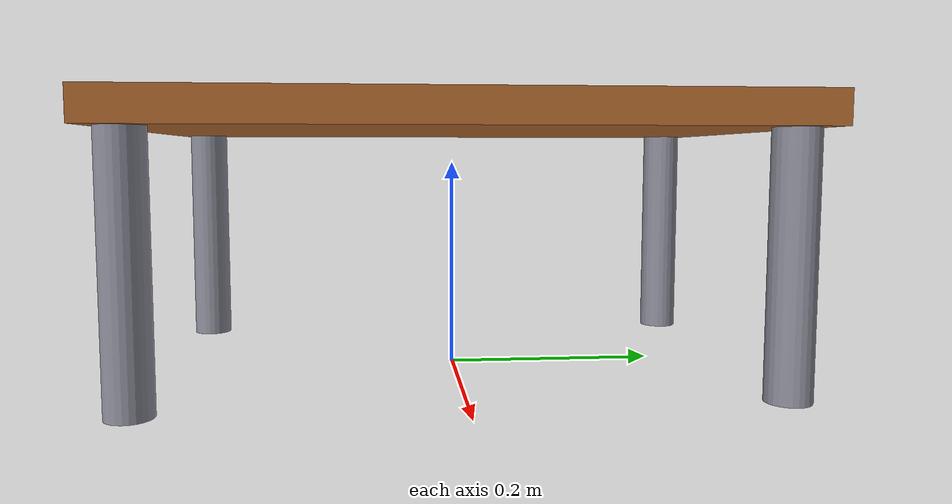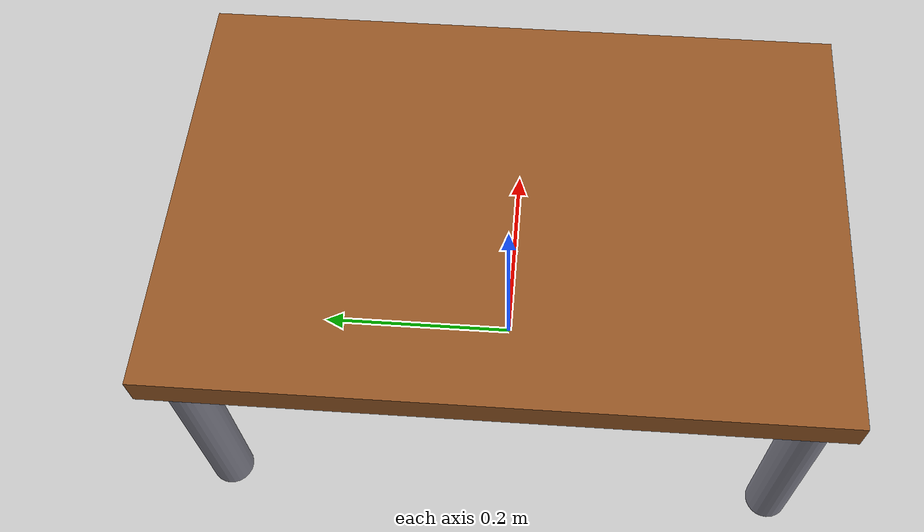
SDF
<?xml version="1.0" ?>
<sdf version="1.5">
  <model name="table">
    <static>true</static>
    <link name="link">
      <collision name="surface">
        <pose>0 0 0.245 0 0 0</pose>
        <geometry>
          <box>
            <size>0.4 0.6 0.03</size>
          </box>
        </geometry>
        <surface>
          <friction>
            <ode>
              <mu>0.6</mu>
              <mu2>0.6</mu2>
            </ode>
          </friction>
        </surface>
      </collision>
      <visual name="visual1">
        <pose>0 0 0.245 0 0 0</pose>
        <geometry>
          <box>
            <size>0.4 0.6 0.03</size>
          </box>
        </geometry>
        <material>
          <ambient>0.4 0.2 0.08 1</ambient>
          <diffuse>0.6 0.35 0.15 1</diffuse>
          <specular>0.05 0.05 0.05 1</specular>
        </material>
      </visual>
      <collision name="front_left_leg">
        <pose>0.17 0.27 0.1225 0 0 0</pose>
        <geometry>
          <cylinder>
            <radius>0.02</radius>
            <length>0.245</length>
          </cylinder>
        </geometry>
      </collision>
      <visual name="front_left_leg_visual">
        <pose>0.17 0.27 0.1225 0 0 0</pose>
        <geometry>
          <cylinder>
            <radius>0.02</radius>
            <length>0.245</length>
          </cylinder>
        </geometry>
        <material>
          <ambient>0.3 0.3 0.35 1</ambient>
          <diffuse>0.5 0.5 0.55 1</diffuse>
          <specular>0.1 0.1 0.1 1</specular>
        </material>
      </visual>
      <collision name="front_right_leg">
        <pose>0.17 -0.27 0.1225 0 0 0</pose>
        <geometry>
          <cylinder>
            <radius>0.02</radius>
            <length>0.245</length>
          </cylinder>
        </geometry>
      </collision>
      <visual name="front_right_leg_visual">
        <pose>0.17 -0.27 0.1225 0 0 0</pose>
        <geometry>
          <cylinder>
            <radius>0.02</radius>
            <length>0.245</length>
          </cylinder>
        </geometry>
        <material>
          <ambient>0.3 0.3 0.35 1</ambient>
          <diffuse>0.5 0.5 0.55 1</diffuse>
          <specular>0.1 0.1 0.1 1</specular>
        </material>
      </visual>
      <collision name="back_right_leg">
        <pose>-0.17 -0.27 0.1225 0 0 0</pose>
        <geometry>
          <cylinder>
            <radius>0.02</radius>
            <length>0.245</length>
          </cylinder>
        </geometry>
      </collision>
      <visual name="back_right_leg_visual">
        <pose>-0.17 -0.27 0.1225 0 0 0</pose>
        <geometry>
          <cylinder>
            <radius>0.02</radius>
            <length>0.245</length>
          </cylinder>
        </geometry>
        <material>
          <ambient>0.3 0.3 0.35 1</ambient>
          <diffuse>0.5 0.5 0.55 1</diffuse>
          <specular>0.1 0.1 0.1 1</specular>
        </material>
      </visual>
      <collision name="back_left_leg">
        <pose>-0.17 0.27 0.1225 0 0 0</pose>
        <geometry>
          <cylinder>
            <radius>0.02</radius>
            <length>0.245</length>
          </cylinder>
        </geometry>
      </collision>
      <visual name="back_left_leg_visual">
        <pose>-0.17 0.27 0.1225 0 0 0</pose>
        <geometry>
          <cylinder>
            <radius>0.02</radius>
            <length>0.245</length>
          </cylinder>
        </geometry>
        <material>
          <ambient>0.3 0.3 0.35 1</ambient>
          <diffuse>0.5 0.5 0.55 1</diffuse>
          <specular>0.1 0.1 0.1 1</specular>
        </material>
      </visual>
    </link>
  </model>
</sdf>
